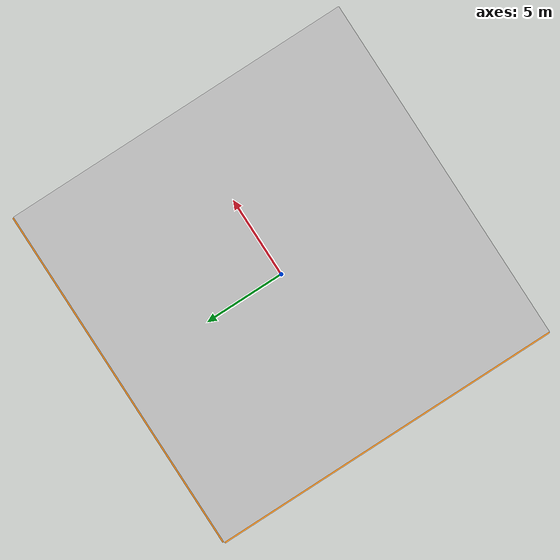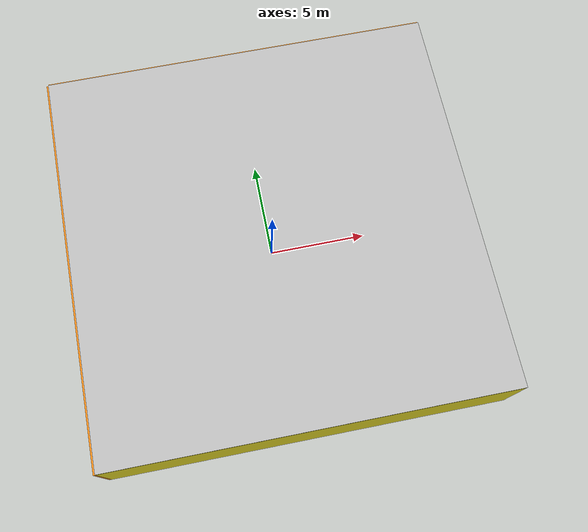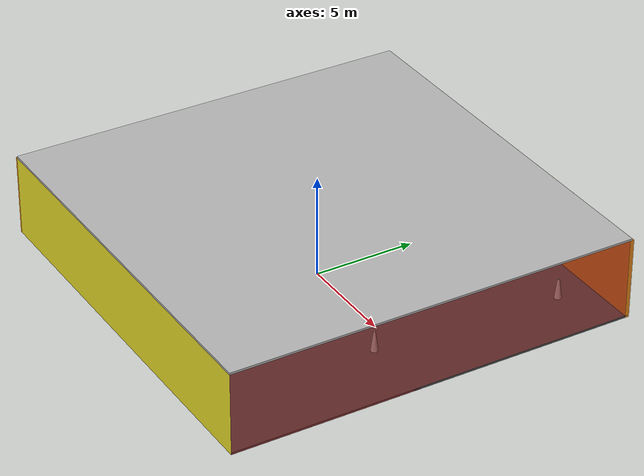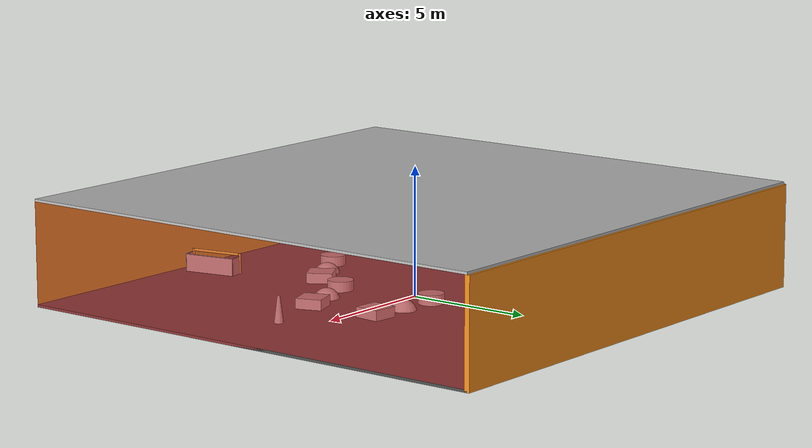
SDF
<sdf version="1.4">
 <world name="default">
  <physics type="ode">
   <max_step_size>0.001</max_step_size>
   <real_time_factor>1</real_time_factor>
   <real_time_update_rate>1000</real_time_update_rate>
   <gravity>0 0 -9.8</gravity>
  </physics>
  <scene><ambient>0.4 0.4 0.4 1</ambient><background>0.7 0.7 0.7 1</background><shadows>1</shadows></scene>
  <model name="Surrounding">
   <static>1</static>
   <link name="Ceiling">
    <collision name="Ceiling_Collision"><geometry><box><size>20 20 0.1</size></box></geometry></collision>
    <visual name="Ceiling_Visual">
     <geometry><box><size>20 20 0.1</size></box></geometry>
     <material>
      <script><uri>file://media/materials/scripts/gazebo.material</uri><name>Gazebo/CloudySky</name></script>
     </material>
    </visual>
    <pose>0 0 4.05 0 0 0</pose>
   </link>
   <link name="Wall_South">
    <collision name="Wall_South_Collision">
     <geometry><box><size>20 0 4</size></box></geometry>
     <pose>0 0 2 0 -0 0</pose>
    </collision>
    <visual name="Wall_South_Visual">
     <pose>0 0 2 0 -0 0</pose>
     <geometry><box><size>20 0 4</size></box></geometry>
     <material>
      <script><uri>file://media/materials/scripts/gazebo.material</uri><name>Gazebo/YellowGlow</name></script>
     </material>
    </visual>
    <velocity_decay><linear>0</linear><angular>0</angular></velocity_decay>
    <pose>0 -10 0 0 -0 0</pose>
   </link>
   <link name="Wall_East">
    <collision name="Wall_21_Collision">
     <geometry><box><size>20 0 4</size></box></geometry>
     <pose>0 0 2 0 -0 0</pose>
    </collision>
    <visual name="Wall_21_Visual">
     <pose>0 0 2 0 -0 0</pose>
     <geometry><box><size>20 0 4</size></box></geometry>
     <material>
      <script><uri>file://media/materials/scripts/gazebo.material</uri><name>Gazebo/RedTransparent</name></script>
     </material>
    </visual>
    <velocity_decay><linear>0</linear><angular>0</angular></velocity_decay>
    <pose>10 0 0 0 -0 1.5708</pose>
   </link>
   <link name="Wall_North">
    <collision name="Wall_22_Collision">
     <geometry><box><size>20 0.2 4</size></box></geometry>
     <pose>0 0 2 0 -0 0</pose>
    </collision>
    <visual name="Wall_22_Visual">
     <pose>0 0 2 0 -0 0</pose>
     <geometry><box><size>20 0.2 4</size></box></geometry>
     <material>
      <script><uri>file://media/materials/scripts/gazebo.material</uri><name>Gazebo/Orange</name></script>
     </material>
    </visual>
    <velocity_decay><linear>0</linear><angular>0</angular></velocity_decay>
    <pose>0 10 0 0 -0 0</pose>
   </link>
   <link name="Wall_West">
    <collision name="Wall_23_Collision">
     <geometry><box><size>20 0.2 4</size></box></geometry>
     <pose>0 0 2 0 -0 0</pose>
    </collision>
    <visual name="Wall_23_Visual">
     <pose>0 0 2 0 -0 0</pose>
     <geometry><box><size>20 0.2 4</size></box></geometry>
     <material>
      <script><uri>file://media/materials/scripts/gazebo.material</uri><name>Gazebo/Orange</name></script>
     </material>
    </visual>
    <velocity_decay><linear>0</linear><angular>0</angular></velocity_decay>
    <pose>-10 0 0 0 0 -1.5708</pose>
   </link>
   <link name="Ground_link">
    <collision name="collision">
     <pose>0 0 .05 0 -0 0</pose>
     <geometry><box><size>20 20 0.1</size></box></geometry>
    </collision>
    <visual name="visual">
     <pose>0 0 .05 0 -0 0</pose>
     <geometry><box><size>20 20 0.1</size></box></geometry>
     <material>
      <script><uri>file://media/materials/scripts/gazebo.material</uri><name>Gazebo/Road</name></script>
     </material>
    </visual>
   </link>
   <static>1</static>
  </model>
  <spherical_coordinates>
   <surface_model>EARTH_WGS84</surface_model>
   <latitude_deg>0</latitude_deg>
   <longitude_deg>0</longitude_deg>
   <elevation>0</elevation>
   <heading_deg>0</heading_deg>
  </spherical_coordinates>
  <light name="lightball_0" type="diffuse">
   <diffuse>0.8 0.8 0.8 1</diffuse>
   <specular>0.2 0.2 0.2 1</specular>
   <attenuation>
    <range>100</range>
    <constant>0.7</constant>
    <linear>0.01</linear>
    <quadratic>0.001</quadratic>
   </attenuation>
   <direction>-0.5 0.1 -0.9</direction>
   <pose>-6.53505844976 -7.10436903409 2.09291402778 0 0 0</pose>
  </light>
  <light name="lightball_1" type="diffuse">
   <diffuse>0.8 0.8 0.8 1</diffuse>
   <specular>0.2 0.2 0.2 1</specular>
   <attenuation>
    <range>100</range>
    <constant>0.7</constant>
    <linear>0.01</linear>
    <quadratic>0.001</quadratic>
   </attenuation>
   <direction>-0.5 0.1 -0.9</direction>
   <pose>-1.20628093795 -4.11269841809 0.704625368019 0 0 0</pose>
  </light>
  <light name="lightball_2" type="diffuse">
   <diffuse>0.8 0.8 0.8 1</diffuse>
   <specular>0.2 0.2 0.2 1</specular>
   <attenuation>
    <range>100</range>
    <constant>0.7</constant>
    <linear>0.01</linear>
    <quadratic>0.001</quadratic>
   </attenuation>
   <direction>-0.5 0.1 -0.9</direction>
   <pose>4.41512444424 -0.58110428087 1.99080820597 0 0 0</pose>
  </light>
  <light name="lightball_3" type="diffuse">
   <diffuse>0.8 0.8 0.8 1</diffuse>
   <specular>0.2 0.2 0.2 1</specular>
   <attenuation>
    <range>100</range>
    <constant>0.7</constant>
    <linear>0.01</linear>
    <quadratic>0.001</quadratic>
   </attenuation>
   <direction>-0.5 0.1 -0.9</direction>
   <pose>-1.43075449147 -7.08556441511 2.54637641965 0 0 0</pose>
  </light>
  <light name="lightball_4" type="diffuse">
   <diffuse>0.8 0.8 0.8 1</diffuse>
   <specular>0.2 0.2 0.2 1</specular>
   <attenuation>
    <range>100</range>
    <constant>0.7</constant>
    <linear>0.01</linear>
    <quadratic>0.001</quadratic>
   </attenuation>
   <direction>-0.5 0.1 -0.9</direction>
   <pose>-5.74011224356 -3.52946559399 1.72723335163 0 0 0</pose>
  </light>
  <light name="lightball_5" type="diffuse">
   <diffuse>0.8 0.8 0.8 1</diffuse>
   <specular>0.2 0.2 0.2 1</specular>
   <attenuation>
    <range>100</range>
    <constant>0.7</constant>
    <linear>0.01</linear>
    <quadratic>0.001</quadratic>
   </attenuation>
   <direction>-0.5 0.1 -0.9</direction>
   <pose>-9.19933266352 6.47520323186 1.52429495123 0 0 0</pose>
  </light>
  <light name="lightball_6" type="diffuse">
   <diffuse>0.8 0.8 0.8 1</diffuse>
   <specular>0.2 0.2 0.2 1</specular>
   <attenuation>
    <range>100</range>
    <constant>0.7</constant>
    <linear>0.01</linear>
    <quadratic>0.001</quadratic>
   </attenuation>
   <direction>-0.5 0.1 -0.9</direction>
   <pose>-7.65031545395 7.51355363984 2.01627691112 0 0 0</pose>
  </light>
  <light name="lightball_7" type="diffuse">
   <diffuse>0.8 0.8 0.8 1</diffuse>
   <specular>0.2 0.2 0.2 1</specular>
   <attenuation>
    <range>100</range>
    <constant>0.7</constant>
    <linear>0.01</linear>
    <quadratic>0.001</quadratic>
   </attenuation>
   <direction>-0.5 0.1 -0.9</direction>
   <pose>-8.27697388044 2.30815648714 2.06724256172 0 0 0</pose>
  </light>
  <light name="lightball_8" type="diffuse">
   <diffuse>0.8 0.8 0.8 1</diffuse>
   <specular>0.2 0.2 0.2 1</specular>
   <attenuation>
    <range>100</range>
    <constant>0.7</constant>
    <linear>0.01</linear>
    <quadratic>0.001</quadratic>
   </attenuation>
   <direction>-0.5 0.1 -0.9</direction>
   <pose>-7.83122215809 -4.16142693502 0.805424049836 0 0 0</pose>
  </light>
  <light name="lightball_9" type="diffuse">
   <diffuse>0.8 0.8 0.8 1</diffuse>
   <specular>0.2 0.2 0.2 1</specular>
   <attenuation>
    <range>100</range>
    <constant>0.7</constant>
    <linear>0.01</linear>
    <quadratic>0.001</quadratic>
   </attenuation>
   <direction>-0.5 0.1 -0.9</direction>
   <pose>-9.25119277383 -3.47737117862 0.942226153857 0 0 0</pose>
  </light>
  <light name="lightball_10" type="diffuse">
   <diffuse>0.8 0.8 0.8 1</diffuse>
   <specular>0.2 0.2 0.2 1</specular>
   <attenuation>
    <range>100</range>
    <constant>0.7</constant>
    <linear>0.01</linear>
    <quadratic>0.001</quadratic>
   </attenuation>
   <direction>-0.5 0.1 -0.9</direction>
   <pose>9.75321811172 0.660081697913 0.977706348401 0 0 0</pose>
  </light>
  <light name="lightball_11" type="diffuse">
   <diffuse>0.8 0.8 0.8 1</diffuse>
   <specular>0.2 0.2 0.2 1</specular>
   <attenuation>
    <range>100</range>
    <constant>0.7</constant>
    <linear>0.01</linear>
    <quadratic>0.001</quadratic>
   </attenuation>
   <direction>-0.5 0.1 -0.9</direction>
   <pose>-6.36800602245 6.25245700928 1.42636671072 0 0 0</pose>
  </light>
  <include><uri>model://table</uri><pose>-8.51392259412 -5.12748366568 0 0 0 2.01710572127</pose></include>
  <include><uri>model://table</uri><pose>-4.67405107547 5.42578603333 0 0 0 0.867606743689</pose></include>
  <include>
   <uri>model://textured_shapes</uri>
   <pose>-0.826938838003 -5.01013627643 0 0 0 2.11074465062</pose>
  </include>
  <include>
   <uri>model://robocup_3Dsim_goal</uri>
   <pose>1.60964508781 -8.6002260549 0 0 0 0.183232241502</pose>
  </include>
  <include>
   <uri>model://textured_shapes</uri>
   <pose>2.57708742557 -2.19409984817 0 0 0 1.91162607189</pose>
  </include>
  <include>
   <uri>model://textured_shapes</uri>
   <pose>2.30819124296 1.27227340617 0 0 0 1.48841637082</pose>
  </include>
  <include>
   <uri>model://construction_cone</uri>
   <pose>6.65832670172 -1.05428767563 0 0 0 1.03151574957</pose>
  </include>
  <include>
   <uri>model://construction_cone</uri>
   <pose>7.27046755184 8.17459811077 0 0 0 2.04348803359</pose>
  </include>
 </world>
</sdf>

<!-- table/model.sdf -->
<sdf version="1.5">
  <model name="table">
    <static>true</static>
    <link name="link">
      <collision name="surface">
        <pose>0 0 1.0 0 0 0</pose>
        <geometry>
          <box>
            <size>1.5 0.8 0.03</size>
          </box>
        </geometry>
        <surface>
          <friction>
            <ode>
              <mu>0.6</mu>
              <mu2>0.6</mu2>
            </ode>
          </friction>
        </surface>
      </collision>
      <visual name="visual1">
        <pose>0 0 1.0 0 0 0</pose>
        <geometry>
          <box>
            <size>1.5 0.8 0.03</size>
          </box>
        </geometry>
        <material>
          <script>
            <uri>model://media/materials/scripts/gazebo.material</uri>
            <name>Gazebo/Wood</name>
          </script>
        </material>
      </visual>
      <collision name="front_left_leg">
        <pose>0.68 0.38 0.5 0 0 0</pose>
        <geometry>
          <cylinder>
            <radius>0.02</radius>
            <length>1.0</length>
          </cylinder>
        </geometry>
      </collision>
      <visual name="front_left_leg">
        <pose>0.68 0.38 0.5 0 0 0</pose>
        <geometry>
          <cylinder>
            <radius>0.02</radius>
            <length>1.0</length>
          </cylinder>
        </geometry>
        <material>
          <script>
            <uri>model://media/materials/scripts/gazebo.material</uri>
            <name>Gazebo/Grey</name>
          </script>
        </material>
      </visual>
      <collision name="front_right_leg">
        <pose>0.68 -0.38 0.5 0 0 0</pose>
        <geometry>
          <cylinder>
            <radius>0.02</radius>
            <length>1.0</length>
          </cylinder>
        </geometry>
      </collision>
      <visual name="front_right_leg">
        <pose>0.68 -0.38 0.5 0 0 0</pose>
        <geometry>
          <cylinder>
            <radius>0.02</radius>
            <length>1.0</length>
          </cylinder>
        </geometry>
        <material>
          <script>
            <uri>model://media/materials/scripts/gazebo.material</uri>
            <name>Gazebo/Grey</name>
          </script>
        </material>
      </visual>
      <collision name="back_right_leg">
        <pose>-0.68 -0.38 0.5 0 0 0</pose>
        <geometry>
          <cylinder>
            <radius>0.02</radius>
            <length>1.0</length>
          </cylinder>
        </geometry>
      </collision>
      <visual name="back_right_leg">
        <pose>-0.68 -0.38 0.5 0 0 0</pose>
        <geometry>
          <cylinder>
            <radius>0.02</radius>
            <length>1.0</length>
          </cylinder>
        </geometry>
        <material>
          <script>
            <uri>model://media/materials/scripts/gazebo.material</uri>
            <name>Gazebo/Grey</name>
          </script>
        </material>
      </visual>
      <collision name="back_left_leg">
        <pose>-0.68 0.38 0.5 0 0 0</pose>
        <geometry>
          <cylinder>
            <radius>0.02</radius>
            <length>1.0</length>
          </cylinder>
        </geometry>
      </collision>
      <visual name="back_left_leg">
        <pose>-0.68 0.38 0.5 0 0 0</pose>
        <geometry>
          <cylinder>
            <radius>0.02</radius>
            <length>1.0</length>
          </cylinder>
        </geometry>
        <material>
          <script>
            <uri>model://media/materials/scripts/gazebo.material</uri>
            <name>Gazebo/Grey</name>
          </script>
        </material>
      </visual>
    </link>
  </model>
</sdf>

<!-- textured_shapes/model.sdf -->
<sdf version="1.6">
  <model name="textured_shapes">
    <pose>0 0 0.5 0 0 0</pose>
    <link name="box">
      <pose>0 -1.5 0 0 0 0</pose>
      <collision name="collision">
        <geometry>
          <box>
            <size>1 1 1</size>
          </box>
        </geometry>
      </collision>
      <visual name="visual">
        <geometry>
          <box>
            <size>1 1 1</size>
          </box>
        </geometry>
        <material>
          <script>
            <uri>model://../model_source/models/textured_shapes/materials/scripts</uri>
            <uri>model://../model_source/models/textured_shapes/materials/textures</uri>
            <name>TexturedShape/Squares</name>
          </script>
        </material>
      </visual>
    </link>
    <link name="sphere">
      <collision name="collision">
        <geometry>
          <sphere>
            <radius>0.5</radius>
          </sphere>
        </geometry>
      </collision>
      <visual name="visual">
        <geometry>
          <sphere>
            <radius>0.5</radius>
          </sphere>
        </geometry>
        <material>
          <script>
            <uri>model://../model_source/models/textured_shapes/materials/scripts</uri>
            <uri>model://../model_source/models/textured_shapes/materials/textures</uri>
            <name>TexturedShape/Squares</name>
          </script>
        </material>
      </visual>
    </link>
    <link name="cylinder">
      <pose>0 1.5 0 0 0 0</pose>
      <collision name="collision">
        <geometry>
          <cylinder>
            <radius>0.5</radius>
            <length>1</length>
          </cylinder>
        </geometry>
      </collision>
      <visual name="visual">
        <geometry>
          <cylinder>
            <radius>0.5</radius>
            <length>1</length>
          </cylinder>
        </geometry>
        <material>
          <script>
            <uri>model://../model_source/models/textured_shapes/materials/scripts</uri>
            <uri>model://../model_source/models/textured_shapes/materials/textures</uri>
            <name>TexturedShape/Squares</name>
          </script>
        </material>
      </visual>
    </link>
  </model>
</sdf>

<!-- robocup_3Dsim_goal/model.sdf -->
<sdf version="1.5">
  <model name="robocup_3d_goal">
    <static>true</static>
    <link name="left_post">
      <pose>0 1.05 0.45 0 0 0</pose>
      <collision name="collision">
        <geometry>
          <cylinder>
            <radius>0.05</radius>
            <length>0.9</length>
          </cylinder>
        </geometry>
      </collision>
      <visual name="visual">
        <geometry>
          <cylinder>
            <radius>0.05</radius>
            <length>0.9</length>
          </cylinder>
        </geometry>
        <material>
          <script>
            <uri>file://media/materials/scripts/gazebo.material</uri>
            <name>Gazebo/ZincYellow</name>
          </script>
        </material>
      </visual>
    </link>
    <link name="left_support_horiz_lower">
      <pose>0.30 1.05 0.01 0 0 0</pose>
      <collision name="collision">
        <geometry>
          <box>
            <size>0.50 0.02 0.02</size>
          </box>
        </geometry>
      </collision>
      <visual name="visual">
        <geometry>
          <box>
            <size>0.50 0.02 0.02</size>
          </box>
        </geometry>
        <material>
          <script>
            <uri>file://media/materials/scripts/gazebo.material</uri>
            <name>Gazebo/White</name>
          </script>
        </material>
      </visual>
    </link>
    <link name="left_support_horiz_upper">
      <pose>0.30 1.05 0.79 0 0 0</pose>
      <collision name="collision">
        <geometry>
          <box>
            <size>0.50 0.02 0.02</size>
          </box>
        </geometry>
      </collision>
      <visual name="visual">
        <geometry>
          <box>
            <size>0.50 0.02 0.02</size>
          </box>
        </geometry>
        <material>
          <script>
            <uri>file://media/materials/scripts/gazebo.material</uri>
            <name>Gazebo/White</name>
          </script>
        </material>
      </visual>
    </link>
    <link name="left_support_vertical">
      <pose>0.56 1.05 0.4 0 1.5708 0</pose>
      <collision name="collision">
        <geometry>
          <box>
            <size>0.80 0.02 0.02</size>
          </box>
        </geometry>
      </collision>
      <visual name="visual">
        <geometry>
          <box>
            <size>0.80 0.02 0.02</size>
          </box>
        </geometry>
        <material>
          <script>
            <uri>file://media/materials/scripts/gazebo.material</uri>
            <name>Gazebo/White</name>
          </script>
        </material>
      </visual>
    </link>
    <link name="right_support_horiz_lower">
      <pose>0.30 -1.05 0.01 0 0 0</pose>
      <collision name="collision">
        <geometry>
          <box>
            <size>0.50 0.02 0.02</size>
          </box>
        </geometry>
      </collision>
      <visual name="visual">
        <geometry>
          <box>
            <size>0.50 0.02 0.02</size>
          </box>
        </geometry>
        <material>
          <script>
            <uri>file://media/materials/scripts/gazebo.material</uri>
            <name>Gazebo/White</name>
          </script>
        </material>
      </visual>
    </link>
    <link name="right_support_horiz_upper">
      <pose>0.30 -1.05 0.79 0 0 0</pose>
      <collision name="collision">
        <geometry>
          <box>
            <size>0.50 0.02 0.02</size>
          </box>
        </geometry>
      </collision>
      <visual name="visual">
        <geometry>
          <box>
            <size>0.50 0.02 0.02</size>
          </box>
        </geometry>
        <material>
          <script>
            <uri>file://media/materials/scripts/gazebo.material</uri>
            <name>Gazebo/White</name>
          </script>
        </material>
      </visual>
    </link>
    <link name="right_support_vertical">
      <pose>0.56 -1.05 0.4 0 1.5708 0</pose>
      <collision name="collision">
        <geometry>
          <box>
            <size>0.80 0.02 0.02</size>
          </box>
        </geometry>
      </collision>
      <visual name="visual">
        <geometry>
          <box>
            <size>0.80 0.02 0.02</size>
          </box>
        </geometry>
        <material>
          <script>
            <uri>file://media/materials/scripts/gazebo.material</uri>
            <name>Gazebo/White</name>
          </script>
        </material>
      </visual>
    </link>
    <link name="center_support_horiz_lower">
      <pose>0.56 0 0.01 0 1.5708 0</pose>
      <collision name="collision">
        <geometry>
          <box>
            <size>0.02 2.08 0.02</size>
          </box>
        </geometry>
      </collision>
      <visual name="visual">
        <geometry>
          <box>
            <size>0.02 2.08 0.02</size>
          </box>
        </geometry>
        <material>
          <script>
            <uri>file://media/materials/scripts/gazebo.material</uri>
            <name>Gazebo/White</name>
          </script>
        </material>
      </visual>
    </link>
    <link name="center_support_horiz_upper">
      <pose>0.56 0 0.79 0 1.5708 0</pose>
      <collision name="collision">
        <geometry>
          <box>
            <size>0.02 2.08 0.02</size>
          </box>
        </geometry>
      </collision>
      <visual name="visual">
        <geometry>
          <box>
            <size>0.02 2.08 0.02</size>
          </box>
        </geometry>
        <material>
          <script>
            <uri>file://media/materials/scripts/gazebo.material</uri>
            <name>Gazebo/White</name>
          </script>
        </material>
      </visual>
    </link>
    <link name="right_post">
      <pose>0 -1.05 0.45 0 0 0</pose>
      <collision name="collision">
        <geometry>
          <cylinder>
            <radius>0.05</radius>
            <length>0.9</length>
          </cylinder>
        </geometry>
      </collision>
      <visual name="visual">
        <geometry>
          <cylinder>
            <radius>0.05</radius>
            <length>0.9</length>
          </cylinder>
        </geometry>
        <material>
          <script>
            <uri>file://media/materials/scripts/gazebo.material</uri>
            <name>Gazebo/ZincYellow</name>
          </script>
        </material>
      </visual>
    </link>
    <link name="crossbar">
      <pose>0 0 0.85 1.57 1.57 0</pose>
      <collision name="collision">
        <geometry>
          <cylinder>
            <radius>0.05</radius>
            <length>2.0</length>
          </cylinder>
        </geometry>
      </collision>
      <visual name="visual">
        <geometry>
          <cylinder>
            <radius>0.05</radius>
            <length>2.0</length>
          </cylinder>
        </geometry>
        <material>
          <script>
            <uri>file://media/materials/scripts/gazebo.material</uri>
            <name>Gazebo/ZincYellow</name>
          </script>
        </material>
      </visual>
    </link>
    <link name="center_net">
      <pose>0.56 0 0.40 0 0 0</pose>
      <collision name="collision">
        <geometry>
          <box>
            <size>0.01 2.1 0.80</size>
          </box>
        </geometry>
      </collision>
      <visual name="visual">
        <geometry>
          <box>
            <size>0.01 2.1 0.80</size>
          </box>
        </geometry>
        <material>
          <script>
            <uri>model://../model_source/models/robocup09_spl_field/materials/scripts/</uri>
            <uri>model://../model_source/models/robocup09_spl_field/materials/textures/</uri>
            <name>RoboCup/Net</name>
          </script>
        </material>
      </visual>
    </link>
    <link name="left_net">
      <pose>0.30 1.05 0.40 0 0 0</pose>
      <collision name="collision">
        <geometry>
          <box>
            <size>0.50 0.01 0.76</size>
          </box>
        </geometry>
      </collision>
      <visual name="visual">
        <geometry>
          <box>
            <size>0.50 0.01 0.76</size>
          </box>
        </geometry>
        <material>
          <script>
            <uri>model://../model_source/models/robocup09_spl_field/materials/scripts/</uri>
            <uri>model://../model_source/models/robocup09_spl_field/materials/textures/</uri>
            <name>RoboCup/Net</name>
          </script>
        </material>
      </visual>
    </link>
    <link name="right_net">
      <pose>0.30 -1.05 0.40 0 0 0</pose>
      <collision name="collision">
        <geometry>
          <box>
            <size>0.50 0.01 0.76</size>
          </box>
        </geometry>
      </collision>
      <visual name="visual">
        <geometry>
          <box>
            <size>0.50 0.01 0.76</size>
          </box>
        </geometry>
        <material>
          <script>
            <uri>model://../model_source/models/robocup09_spl_field/materials/scripts/</uri>
            <uri>model://../model_source/models/robocup09_spl_field/materials/textures/</uri>
            <name>RoboCup/Net</name>
          </script>
        </material>
      </visual>
    </link>
  </model>
</sdf>

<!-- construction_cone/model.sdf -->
<sdf version="1.5">
  <model name="Construction Cone">
    <link name="link">
      <collision name="collision">
        <geometry>
          <mesh>
            <scale>10 10 10</scale>
            <uri>file://isr-testbed/construction_cone/meshes/construction_cone.dae</uri>
          </mesh>
        </geometry>
      </collision>
      <visual name="visual">
        <geometry>
          <mesh>
            <scale>10 10 10</scale>
            <uri>file://isr-testbed/construction_cone/meshes/construction_cone.dae</uri>
          </mesh>
        </geometry>
      </visual>
    </link>
  </model>
</sdf>
